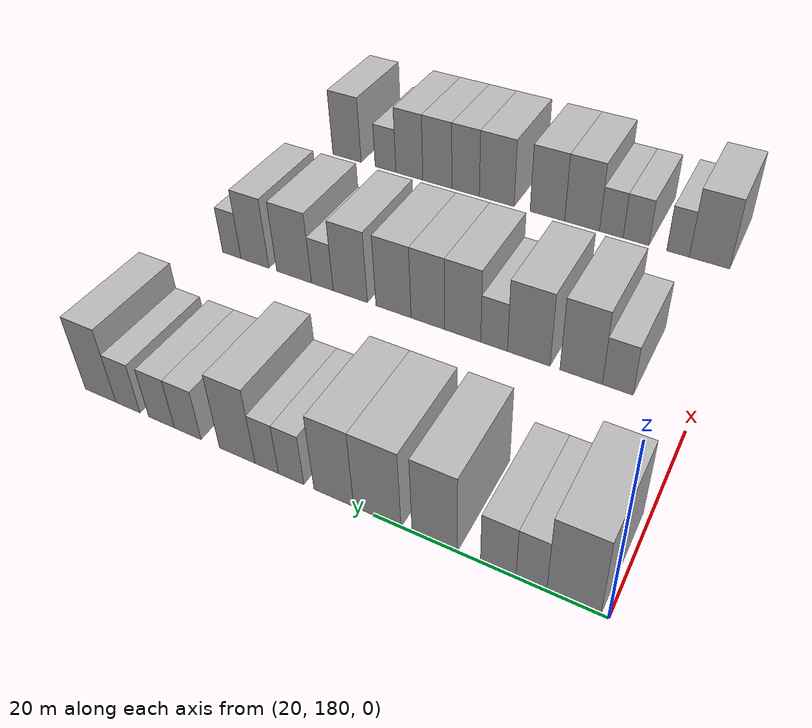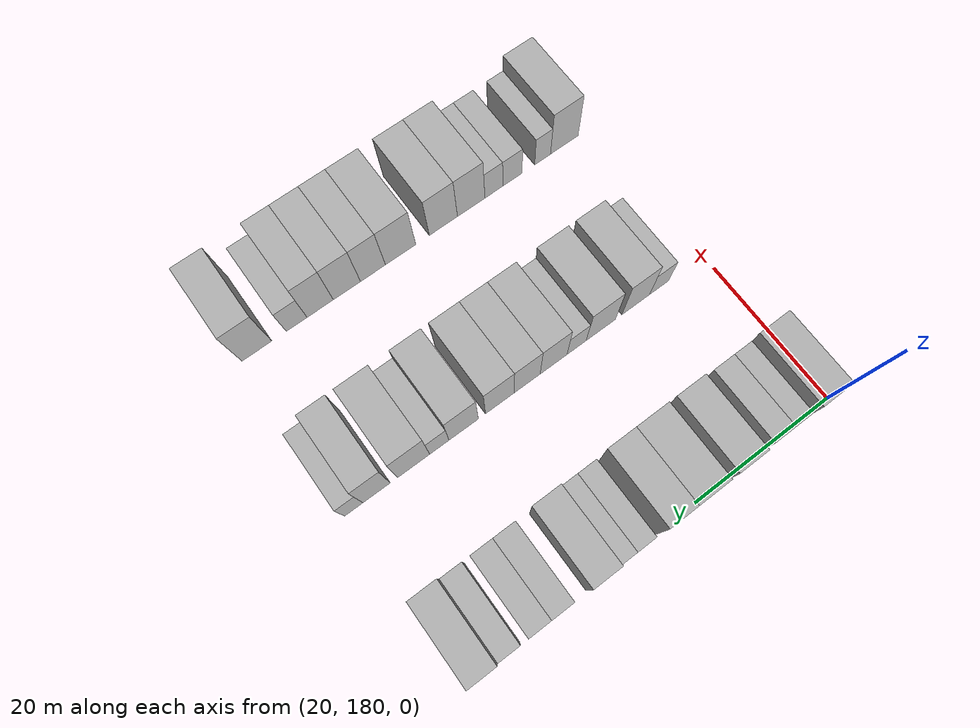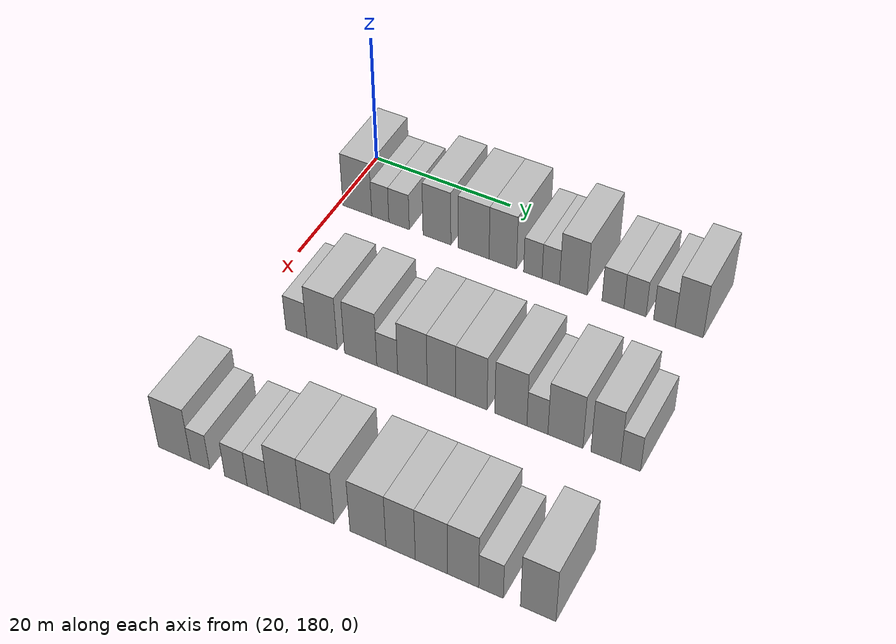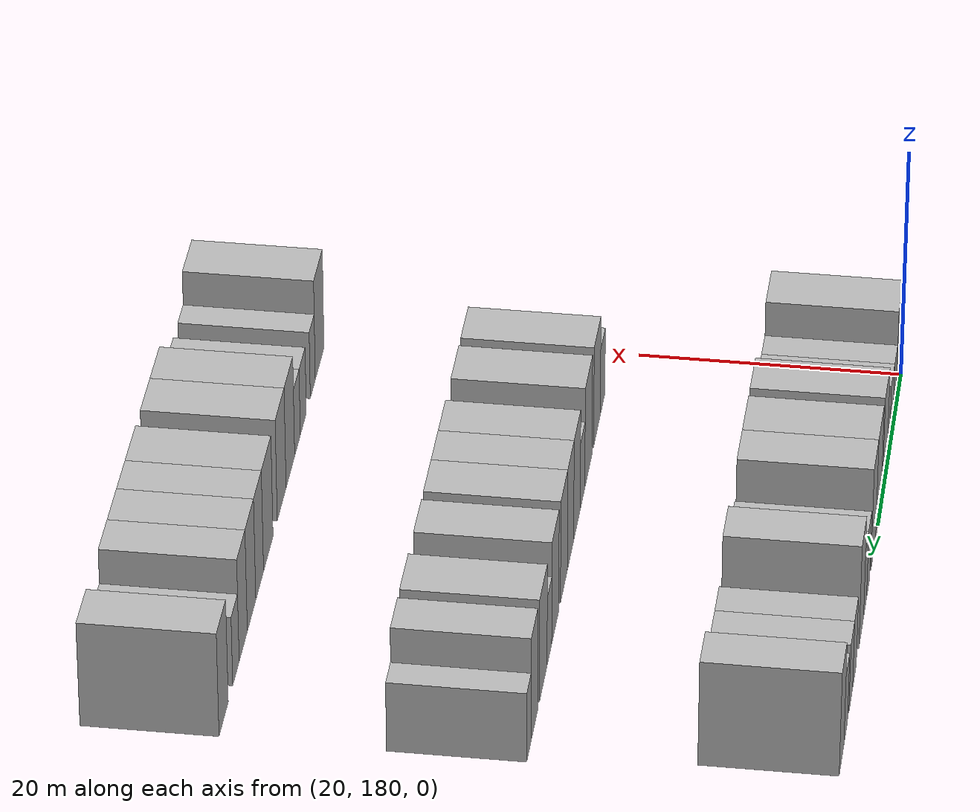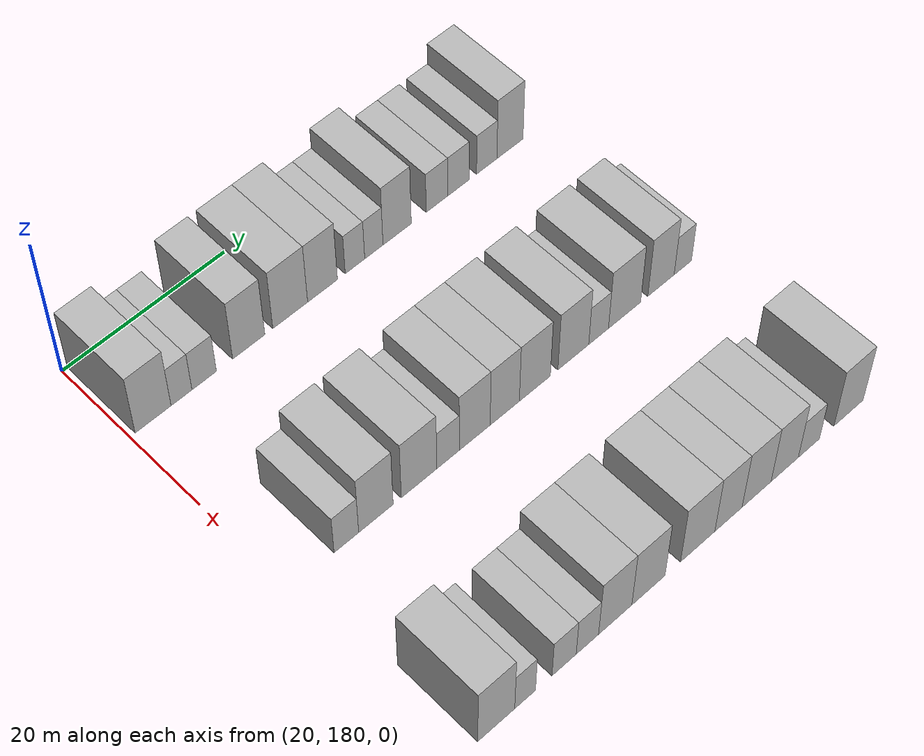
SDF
<sdf version="1.6">
 <world name="default">
  <model name="building_134">
   <static>1</static>
   <pose>25.0000 182.7874 0 0.000000 0.000000 0.000000</pose>
   <link name="link">
    <pose>0 0 4.50 0 0 0</pose>
    <collision name="collision"><geometry><box><size>10.0000 4.3112 9.0000</size></box></geometry></collision>
    <visual name="visual">
     <cast_shadows>0</cast_shadows>
     <geometry><box><size>10.0000 4.3112 9.0000</size></box></geometry>
     <material>
      <script>
       <uri>model://HANNAS_wall/materials/scripts</uri>
       <uri>model://HANNAS_wall/materials/textures</uri>
       <name>vrc/HANNAS_wall</name>
      </script>
     </material>
    </visual>
   </link>
  </model>
  <model name="building_135">
   <static>1</static>
   <pose>25.0000 186.2073 0 0.000000 0.000000 0.000000</pose>
   <link name="link">
    <pose>0 0 3.00 0 0 0</pose>
    <collision name="collision"><geometry><box><size>10.0000 2.5287 6.0000</size></box></geometry></collision>
    <visual name="visual">
     <cast_shadows>0</cast_shadows>
     <geometry><box><size>10.0000 2.5287 6.0000</size></box></geometry>
     <material>
      <script>
       <uri>model://HANNAS_wall/materials/scripts</uri>
       <uri>model://HANNAS_wall/materials/textures</uri>
       <name>vrc/HANNAS_wall</name>
      </script>
     </material>
    </visual>
   </link>
  </model>
  <model name="building_136">
   <static>1</static>
   <pose>25.0000 188.9681 0 0.000000 0.000000 0.000000</pose>
   <link name="link">
    <pose>0 0 3.00 0 0 0</pose>
    <collision name="collision"><geometry><box><size>10.0000 2.9928 6.0000</size></box></geometry></collision>
    <visual name="visual">
     <cast_shadows>0</cast_shadows>
     <geometry><box><size>10.0000 2.9928 6.0000</size></box></geometry>
     <material>
      <script>
       <uri>model://HANNAS_wall/materials/scripts</uri>
       <uri>model://HANNAS_wall/materials/textures</uri>
       <name>vrc/HANNAS_wall</name>
      </script>
     </material>
    </visual>
   </link>
  </model>
  <model name="building_137">
   <static>1</static>
   <pose>25.0000 194.4721 0 0.000000 0.000000 0.000000</pose>
   <link name="link">
    <pose>0 0 4.50 0 0 0</pose>
    <collision name="collision"><geometry><box><size>10.0000 4.0153 9.0000</size></box></geometry></collision>
    <visual name="visual">
     <cast_shadows>0</cast_shadows>
     <geometry><box><size>10.0000 4.0153 9.0000</size></box></geometry>
     <material>
      <script>
       <uri>model://HANNAS_wall/materials/scripts</uri>
       <uri>model://HANNAS_wall/materials/textures</uri>
       <name>vrc/HANNAS_wall</name>
      </script>
     </material>
    </visual>
   </link>
  </model>
  <model name="building_138">
   <static>1</static>
   <pose>25.0000 199.6897 0 0.000000 0.000000 0.000000</pose>
   <link name="link">
    <pose>0 0 4.50 0 0 0</pose>
    <collision name="collision"><geometry><box><size>10.0000 4.4199 9.0000</size></box></geometry></collision>
    <visual name="visual">
     <cast_shadows>0</cast_shadows>
     <geometry><box><size>10.0000 4.4199 9.0000</size></box></geometry>
     <material>
      <script>
       <uri>model://HANNAS_wall/materials/scripts</uri>
       <uri>model://HANNAS_wall/materials/textures</uri>
       <name>vrc/HANNAS_wall</name>
      </script>
     </material>
    </visual>
   </link>
  </model>
  <model name="building_139">
   <static>1</static>
   <pose>25.0000 203.8203 0 0.000000 0.000000 0.000000</pose>
   <link name="link">
    <pose>0 0 4.50 0 0 0</pose>
    <collision name="collision"><geometry><box><size>10.0000 3.8413 9.0000</size></box></geometry></collision>
    <visual name="visual">
     <cast_shadows>0</cast_shadows>
     <geometry><box><size>10.0000 3.8413 9.0000</size></box></geometry>
     <material>
      <script>
       <uri>model://HANNAS_wall/materials/scripts</uri>
       <uri>model://HANNAS_wall/materials/textures</uri>
       <name>vrc/HANNAS_wall</name>
      </script>
     </material>
    </visual>
   </link>
  </model>
  <model name="building_140">
   <static>1</static>
   <pose>25.0000 208.0142 0 0.000000 0.000000 0.000000</pose>
   <link name="link">
    <pose>0 0 3.00 0 0 0</pose>
    <collision name="collision"><geometry><box><size>10.0000 2.5465 6.0000</size></box></geometry></collision>
    <visual name="visual">
     <cast_shadows>0</cast_shadows>
     <geometry><box><size>10.0000 2.5465 6.0000</size></box></geometry>
     <material>
      <script>
       <uri>model://HANNAS_wall/materials/scripts</uri>
       <uri>model://HANNAS_wall/materials/textures</uri>
       <name>vrc/HANNAS_wall</name>
      </script>
     </material>
    </visual>
   </link>
  </model>
  <model name="building_141">
   <static>1</static>
   <pose>25.0000 210.4906 0 0.000000 0.000000 0.000000</pose>
   <link name="link">
    <pose>0 0 3.00 0 0 0</pose>
    <collision name="collision"><geometry><box><size>10.0000 2.4062 6.0000</size></box></geometry></collision>
    <visual name="visual">
     <cast_shadows>0</cast_shadows>
     <geometry><box><size>10.0000 2.4062 6.0000</size></box></geometry>
     <material>
      <script>
       <uri>model://HANNAS_wall/materials/scripts</uri>
       <uri>model://HANNAS_wall/materials/textures</uri>
       <name>vrc/HANNAS_wall</name>
      </script>
     </material>
    </visual>
   </link>
  </model>
  <model name="building_142">
   <static>1</static>
   <pose>25.0000 213.5738 0 0.000000 0.000000 0.000000</pose>
   <link name="link">
    <pose>0 0 4.50 0 0 0</pose>
    <collision name="collision"><geometry><box><size>10.0000 3.7603 9.0000</size></box></geometry></collision>
    <visual name="visual">
     <cast_shadows>0</cast_shadows>
     <geometry><box><size>10.0000 3.7603 9.0000</size></box></geometry>
     <material>
      <script>
       <uri>model://HANNAS_wall/materials/scripts</uri>
       <uri>model://HANNAS_wall/materials/textures</uri>
       <name>vrc/HANNAS_wall</name>
      </script>
     </material>
    </visual>
   </link>
  </model>
  <model name="building_143">
   <static>1</static>
   <pose>25.0000 218.9261 0 0.000000 0.000000 0.000000</pose>
   <link name="link">
    <pose>0 0 3.00 0 0 0</pose>
    <collision name="collision"><geometry><box><size>10.0000 2.9441 6.0000</size></box></geometry></collision>
    <visual name="visual">
     <cast_shadows>0</cast_shadows>
     <geometry><box><size>10.0000 2.9441 6.0000</size></box></geometry>
     <material>
      <script>
       <uri>model://HANNAS_wall/materials/scripts</uri>
       <uri>model://HANNAS_wall/materials/textures</uri>
       <name>vrc/HANNAS_wall</name>
      </script>
     </material>
    </visual>
   </link>
  </model>
  <model name="building_144">
   <static>1</static>
   <pose>25.0000 221.8528 0 0.000000 0.000000 0.000000</pose>
   <link name="link">
    <pose>0 0 3.00 0 0 0</pose>
    <collision name="collision"><geometry><box><size>10.0000 2.9094 6.0000</size></box></geometry></collision>
    <visual name="visual">
     <cast_shadows>0</cast_shadows>
     <geometry><box><size>10.0000 2.9094 6.0000</size></box></geometry>
     <material>
      <script>
       <uri>model://HANNAS_wall/materials/scripts</uri>
       <uri>model://HANNAS_wall/materials/textures</uri>
       <name>vrc/HANNAS_wall</name>
      </script>
     </material>
    </visual>
   </link>
  </model>
  <model name="building_145">
   <static>1</static>
   <pose>25.0000 225.7180 0 0.000000 0.000000 0.000000</pose>
   <link name="link">
    <pose>0 0 3.00 0 0 0</pose>
    <collision name="collision"><geometry><box><size>10.0000 2.8211 6.0000</size></box></geometry></collision>
    <visual name="visual">
     <cast_shadows>0</cast_shadows>
     <geometry><box><size>10.0000 2.8211 6.0000</size></box></geometry>
     <material>
      <script>
       <uri>model://HANNAS_wall/materials/scripts</uri>
       <uri>model://HANNAS_wall/materials/textures</uri>
       <name>vrc/HANNAS_wall</name>
      </script>
     </material>
    </visual>
   </link>
  </model>
  <model name="building_146">
   <static>1</static>
   <pose>25.0000 228.9493 0 0.000000 0.000000 0.000000</pose>
   <link name="link">
    <pose>0 0 4.50 0 0 0</pose>
    <collision name="collision"><geometry><box><size>10.0000 3.6415 9.0000</size></box></geometry></collision>
    <visual name="visual">
     <cast_shadows>0</cast_shadows>
     <geometry><box><size>10.0000 3.6415 9.0000</size></box></geometry>
     <material>
      <script>
       <uri>model://HANNAS_wall/materials/scripts</uri>
       <uri>model://HANNAS_wall/materials/textures</uri>
       <name>vrc/HANNAS_wall</name>
      </script>
     </material>
    </visual>
   </link>
  </model>
  <model name="building_314">
   <static>1</static>
   <pose>47.0000 186.9718 0 0.000000 0.000000 0.000000</pose>
   <link name="link">
    <pose>0 0 3.00 0 0 0</pose>
    <collision name="collision"><geometry><box><size>10.0000 2.9732 6.0000</size></box></geometry></collision>
    <visual name="visual">
     <cast_shadows>0</cast_shadows>
     <geometry><box><size>10.0000 2.9732 6.0000</size></box></geometry>
     <material>
      <script>
       <uri>model://HANNAS_wall/materials/scripts</uri>
       <uri>model://HANNAS_wall/materials/textures</uri>
       <name>vrc/HANNAS_wall</name>
      </script>
     </material>
    </visual>
   </link>
  </model>
  <model name="building_315">
   <static>1</static>
   <pose>47.0000 190.5674 0 0.000000 0.000000 0.000000</pose>
   <link name="link">
    <pose>0 0 4.50 0 0 0</pose>
    <collision name="collision"><geometry><box><size>10.0000 4.2180 9.0000</size></box></geometry></collision>
    <visual name="visual">
     <cast_shadows>0</cast_shadows>
     <geometry><box><size>10.0000 4.2180 9.0000</size></box></geometry>
     <material>
      <script>
       <uri>model://HANNAS_wall/materials/scripts</uri>
       <uri>model://HANNAS_wall/materials/textures</uri>
       <name>vrc/HANNAS_wall</name>
      </script>
     </material>
    </visual>
   </link>
  </model>
  <model name="building_316">
   <static>1</static>
   <pose>47.0000 195.8863 0 0.000000 0.000000 0.000000</pose>
   <link name="link">
    <pose>0 0 4.50 0 0 0</pose>
    <collision name="collision"><geometry><box><size>10.0000 4.4198 9.0000</size></box></geometry></collision>
    <visual name="visual">
     <cast_shadows>0</cast_shadows>
     <geometry><box><size>10.0000 4.4198 9.0000</size></box></geometry>
     <material>
      <script>
       <uri>model://HANNAS_wall/materials/scripts</uri>
       <uri>model://HANNAS_wall/materials/textures</uri>
       <name>vrc/HANNAS_wall</name>
      </script>
     </material>
    </visual>
   </link>
  </model>
  <model name="building_317">
   <static>1</static>
   <pose>47.0000 199.5125 0 0.000000 0.000000 0.000000</pose>
   <link name="link">
    <pose>0 0 3.00 0 0 0</pose>
    <collision name="collision"><geometry><box><size>10.0000 2.8325 6.0000</size></box></geometry></collision>
    <visual name="visual">
     <cast_shadows>0</cast_shadows>
     <geometry><box><size>10.0000 2.8325 6.0000</size></box></geometry>
     <material>
      <script>
       <uri>model://HANNAS_wall/materials/scripts</uri>
       <uri>model://HANNAS_wall/materials/textures</uri>
       <name>vrc/HANNAS_wall</name>
      </script>
     </material>
    </visual>
   </link>
  </model>
  <model name="building_318">
   <static>1</static>
   <pose>47.0000 202.8997 0 0.000000 0.000000 0.000000</pose>
   <link name="link">
    <pose>0 0 4.50 0 0 0</pose>
    <collision name="collision"><geometry><box><size>10.0000 3.9421 9.0000</size></box></geometry></collision>
    <visual name="visual">
     <cast_shadows>0</cast_shadows>
     <geometry><box><size>10.0000 3.9421 9.0000</size></box></geometry>
     <material>
      <script>
       <uri>model://HANNAS_wall/materials/scripts</uri>
       <uri>model://HANNAS_wall/materials/textures</uri>
       <name>vrc/HANNAS_wall</name>
      </script>
     </material>
    </visual>
   </link>
  </model>
  <model name="building_319">
   <static>1</static>
   <pose>47.0000 206.7609 0 0.000000 0.000000 0.000000</pose>
   <link name="link">
    <pose>0 0 4.50 0 0 0</pose>
    <collision name="collision"><geometry><box><size>10.0000 3.7803 9.0000</size></box></geometry></collision>
    <visual name="visual">
     <cast_shadows>0</cast_shadows>
     <geometry><box><size>10.0000 3.7803 9.0000</size></box></geometry>
     <material>
      <script>
       <uri>model://HANNAS_wall/materials/scripts</uri>
       <uri>model://HANNAS_wall/materials/textures</uri>
       <name>vrc/HANNAS_wall</name>
      </script>
     </material>
    </visual>
   </link>
  </model>
  <model name="building_320">
   <static>1</static>
   <pose>47.0000 210.6855 0 0.000000 0.000000 0.000000</pose>
   <link name="link">
    <pose>0 0 4.50 0 0 0</pose>
    <collision name="collision"><geometry><box><size>10.0000 4.0688 9.0000</size></box></geometry></collision>
    <visual name="visual">
     <cast_shadows>0</cast_shadows>
     <geometry><box><size>10.0000 4.0688 9.0000</size></box></geometry>
     <material>
      <script>
       <uri>model://HANNAS_wall/materials/scripts</uri>
       <uri>model://HANNAS_wall/materials/textures</uri>
       <name>vrc/HANNAS_wall</name>
      </script>
     </material>
    </visual>
   </link>
  </model>
  <model name="building_321">
   <static>1</static>
   <pose>47.0000 215.7783 0 0.000000 0.000000 0.000000</pose>
   <link name="link">
    <pose>0 0 4.50 0 0 0</pose>
    <collision name="collision"><geometry><box><size>10.0000 4.1168 9.0000</size></box></geometry></collision>
    <visual name="visual">
     <cast_shadows>0</cast_shadows>
     <geometry><box><size>10.0000 4.1168 9.0000</size></box></geometry>
     <material>
      <script>
       <uri>model://HANNAS_wall/materials/scripts</uri>
       <uri>model://HANNAS_wall/materials/textures</uri>
       <name>vrc/HANNAS_wall</name>
      </script>
     </material>
    </visual>
   </link>
  </model>
  <model name="building_322">
   <static>1</static>
   <pose>47.0000 219.1699 0 0.000000 0.000000 0.000000</pose>
   <link name="link">
    <pose>0 0 3.00 0 0 0</pose>
    <collision name="collision"><geometry><box><size>10.0000 2.6664 6.0000</size></box></geometry></collision>
    <visual name="visual">
     <cast_shadows>0</cast_shadows>
     <geometry><box><size>10.0000 2.6664 6.0000</size></box></geometry>
     <material>
      <script>
       <uri>model://HANNAS_wall/materials/scripts</uri>
       <uri>model://HANNAS_wall/materials/textures</uri>
       <name>vrc/HANNAS_wall</name>
      </script>
     </material>
    </visual>
   </link>
  </model>
  <model name="building_323">
   <static>1</static>
   <pose>47.0000 222.6980 0 0.000000 0.000000 0.000000</pose>
   <link name="link">
    <pose>0 0 4.50 0 0 0</pose>
    <collision name="collision"><geometry><box><size>10.0000 4.3898 9.0000</size></box></geometry></collision>
    <visual name="visual">
     <cast_shadows>0</cast_shadows>
     <geometry><box><size>10.0000 4.3898 9.0000</size></box></geometry>
     <material>
      <script>
       <uri>model://HANNAS_wall/materials/scripts</uri>
       <uri>model://HANNAS_wall/materials/textures</uri>
       <name>vrc/HANNAS_wall</name>
      </script>
     </material>
    </visual>
   </link>
  </model>
  <model name="building_324">
   <static>1</static>
   <pose>47.0000 227.7214 0 0.000000 0.000000 0.000000</pose>
   <link name="link">
    <pose>0 0 4.50 0 0 0</pose>
    <collision name="collision"><geometry><box><size>10.0000 3.6569 9.0000</size></box></geometry></collision>
    <visual name="visual">
     <cast_shadows>0</cast_shadows>
     <geometry><box><size>10.0000 3.6569 9.0000</size></box></geometry>
     <material>
      <script>
       <uri>model://HANNAS_wall/materials/scripts</uri>
       <uri>model://HANNAS_wall/materials/textures</uri>
       <name>vrc/HANNAS_wall</name>
      </script>
     </material>
    </visual>
   </link>
  </model>
  <model name="building_325">
   <static>1</static>
   <pose>47.0000 230.7666 0 0.000000 0.000000 0.000000</pose>
   <link name="link">
    <pose>0 0 3.00 0 0 0</pose>
    <collision name="collision"><geometry><box><size>10.0000 2.4335 6.0000</size></box></geometry></collision>
    <visual name="visual">
     <cast_shadows>0</cast_shadows>
     <geometry><box><size>10.0000 2.4335 6.0000</size></box></geometry>
     <material>
      <script>
       <uri>model://HANNAS_wall/materials/scripts</uri>
       <uri>model://HANNAS_wall/materials/textures</uri>
       <name>vrc/HANNAS_wall</name>
      </script>
     </material>
    </visual>
   </link>
  </model>
  <model name="building_498">
   <static>1</static>
   <pose>69.0000 184.2885 0 0.000000 0.000000 0.000000</pose>
   <link name="link">
    <pose>0 0 4.50 0 0 0</pose>
    <collision name="collision"><geometry><box><size>10.0000 4.4036 9.0000</size></box></geometry></collision>
    <visual name="visual">
     <cast_shadows>0</cast_shadows>
     <geometry><box><size>10.0000 4.4036 9.0000</size></box></geometry>
     <material>
      <script>
       <uri>model://HANNAS_wall/materials/scripts</uri>
       <uri>model://HANNAS_wall/materials/textures</uri>
       <name>vrc/HANNAS_wall</name>
      </script>
     </material>
    </visual>
   </link>
  </model>
  <model name="building_499">
   <static>1</static>
   <pose>69.0000 187.7437 0 0.000000 0.000000 0.000000</pose>
   <link name="link">
    <pose>0 0 3.00 0 0 0</pose>
    <collision name="collision"><geometry><box><size>10.0000 2.5068 6.0000</size></box></geometry></collision>
    <visual name="visual">
     <cast_shadows>0</cast_shadows>
     <geometry><box><size>10.0000 2.5068 6.0000</size></box></geometry>
     <material>
      <script>
       <uri>model://HANNAS_wall/materials/scripts</uri>
       <uri>model://HANNAS_wall/materials/textures</uri>
       <name>vrc/HANNAS_wall</name>
      </script>
     </material>
    </visual>
   </link>
  </model>
  <model name="building_500">
   <static>1</static>
   <pose>69.0000 192.4821 0 0.000000 0.000000 0.000000</pose>
   <link name="link">
    <pose>0 0 3.00 0 0 0</pose>
    <collision name="collision"><geometry><box><size>10.0000 2.9700 6.0000</size></box></geometry></collision>
    <visual name="visual">
     <cast_shadows>0</cast_shadows>
     <geometry><box><size>10.0000 2.9700 6.0000</size></box></geometry>
     <material>
      <script>
       <uri>model://HANNAS_wall/materials/scripts</uri>
       <uri>model://HANNAS_wall/materials/textures</uri>
       <name>vrc/HANNAS_wall</name>
      </script>
     </material>
    </visual>
   </link>
  </model>
  <model name="building_501">
   <static>1</static>
   <pose>69.0000 195.3495 0 0.000000 0.000000 0.000000</pose>
   <link name="link">
    <pose>0 0 3.00 0 0 0</pose>
    <collision name="collision"><geometry><box><size>10.0000 2.7648 6.0000</size></box></geometry></collision>
    <visual name="visual">
     <cast_shadows>0</cast_shadows>
     <geometry><box><size>10.0000 2.7648 6.0000</size></box></geometry>
     <material>
      <script>
       <uri>model://HANNAS_wall/materials/scripts</uri>
       <uri>model://HANNAS_wall/materials/textures</uri>
       <name>vrc/HANNAS_wall</name>
      </script>
     </material>
    </visual>
   </link>
  </model>
  <model name="building_502">
   <static>1</static>
   <pose>69.0000 198.8225 0 0.000000 0.000000 0.000000</pose>
   <link name="link">
    <pose>0 0 4.50 0 0 0</pose>
    <collision name="collision"><geometry><box><size>10.0000 4.1813 9.0000</size></box></geometry></collision>
    <visual name="visual">
     <cast_shadows>0</cast_shadows>
     <geometry><box><size>10.0000 4.1813 9.0000</size></box></geometry>
     <material>
      <script>
       <uri>model://HANNAS_wall/materials/scripts</uri>
       <uri>model://HANNAS_wall/materials/textures</uri>
       <name>vrc/HANNAS_wall</name>
      </script>
     </material>
    </visual>
   </link>
  </model>
  <model name="building_503">
   <static>1</static>
   <pose>69.0000 203.0318 0 0.000000 0.000000 0.000000</pose>
   <link name="link">
    <pose>0 0 4.50 0 0 0</pose>
    <collision name="collision"><geometry><box><size>10.0000 4.2374 9.0000</size></box></geometry></collision>
    <visual name="visual">
     <cast_shadows>0</cast_shadows>
     <geometry><box><size>10.0000 4.2374 9.0000</size></box></geometry>
     <material>
      <script>
       <uri>model://HANNAS_wall/materials/scripts</uri>
       <uri>model://HANNAS_wall/materials/textures</uri>
       <name>vrc/HANNAS_wall</name>
      </script>
     </material>
    </visual>
   </link>
  </model>
  <model name="building_504">
   <static>1</static>
   <pose>69.0000 209.3866 0 0.000000 0.000000 0.000000</pose>
   <link name="link">
    <pose>0 0 4.50 0 0 0</pose>
    <collision name="collision"><geometry><box><size>10.0000 4.4722 9.0000</size></box></geometry></collision>
    <visual name="visual">
     <cast_shadows>0</cast_shadows>
     <geometry><box><size>10.0000 4.4722 9.0000</size></box></geometry>
     <material>
      <script>
       <uri>model://HANNAS_wall/materials/scripts</uri>
       <uri>model://HANNAS_wall/materials/textures</uri>
       <name>vrc/HANNAS_wall</name>
      </script>
     </material>
    </visual>
   </link>
  </model>
  <model name="building_505">
   <static>1</static>
   <pose>69.0000 213.4260 0 0.000000 0.000000 0.000000</pose>
   <link name="link">
    <pose>0 0 4.50 0 0 0</pose>
    <collision name="collision"><geometry><box><size>10.0000 3.6066 9.0000</size></box></geometry></collision>
    <visual name="visual">
     <cast_shadows>0</cast_shadows>
     <geometry><box><size>10.0000 3.6066 9.0000</size></box></geometry>
     <material>
      <script>
       <uri>model://HANNAS_wall/materials/scripts</uri>
       <uri>model://HANNAS_wall/materials/textures</uri>
       <name>vrc/HANNAS_wall</name>
      </script>
     </material>
    </visual>
   </link>
  </model>
  <model name="building_506">
   <static>1</static>
   <pose>69.0000 217.1764 0 0.000000 0.000000 0.000000</pose>
   <link name="link">
    <pose>0 0 4.50 0 0 0</pose>
    <collision name="collision"><geometry><box><size>10.0000 3.8940 9.0000</size></box></geometry></collision>
    <visual name="visual">
     <cast_shadows>0</cast_shadows>
     <geometry><box><size>10.0000 3.8940 9.0000</size></box></geometry>
     <material>
      <script>
       <uri>model://HANNAS_wall/materials/scripts</uri>
       <uri>model://HANNAS_wall/materials/textures</uri>
       <name>vrc/HANNAS_wall</name>
      </script>
     </material>
    </visual>
   </link>
  </model>
  <model name="building_507">
   <static>1</static>
   <pose>69.0000 220.9811 0 0.000000 0.000000 0.000000</pose>
   <link name="link">
    <pose>0 0 4.50 0 0 0</pose>
    <collision name="collision"><geometry><box><size>10.0000 3.7155 9.0000</size></box></geometry></collision>
    <visual name="visual">
     <cast_shadows>0</cast_shadows>
     <geometry><box><size>10.0000 3.7155 9.0000</size></box></geometry>
     <material>
      <script>
       <uri>model://HANNAS_wall/materials/scripts</uri>
       <uri>model://HANNAS_wall/materials/textures</uri>
       <name>vrc/HANNAS_wall</name>
      </script>
     </material>
    </visual>
   </link>
  </model>
  <model name="building_508">
   <static>1</static>
   <pose>69.0000 224.2917 0 0.000000 0.000000 0.000000</pose>
   <link name="link">
    <pose>0 0 3.00 0 0 0</pose>
    <collision name="collision"><geometry><box><size>10.0000 2.9058 6.0000</size></box></geometry></collision>
    <visual name="visual">
     <cast_shadows>0</cast_shadows>
     <geometry><box><size>10.0000 2.9058 6.0000</size></box></geometry>
     <material>
      <script>
       <uri>model://HANNAS_wall/materials/scripts</uri>
       <uri>model://HANNAS_wall/materials/textures</uri>
       <name>vrc/HANNAS_wall</name>
      </script>
     </material>
    </visual>
   </link>
  </model>
  <model name="building_509">
   <static>1</static>
   <pose>69.0000 229.7944 0 0.000000 0.000000 0.000000</pose>
   <link name="link">
    <pose>0 0 4.50 0 0 0</pose>
    <collision name="collision"><geometry><box><size>10.0000 4.0996 9.0000</size></box></geometry></collision>
    <visual name="visual">
     <cast_shadows>0</cast_shadows>
     <geometry><box><size>10.0000 4.0996 9.0000</size></box></geometry>
     <material>
      <script>
       <uri>model://HANNAS_wall/materials/scripts</uri>
       <uri>model://HANNAS_wall/materials/textures</uri>
       <name>vrc/HANNAS_wall</name>
      </script>
     </material>
    </visual>
   </link>
  </model>
 </world>
</sdf>
